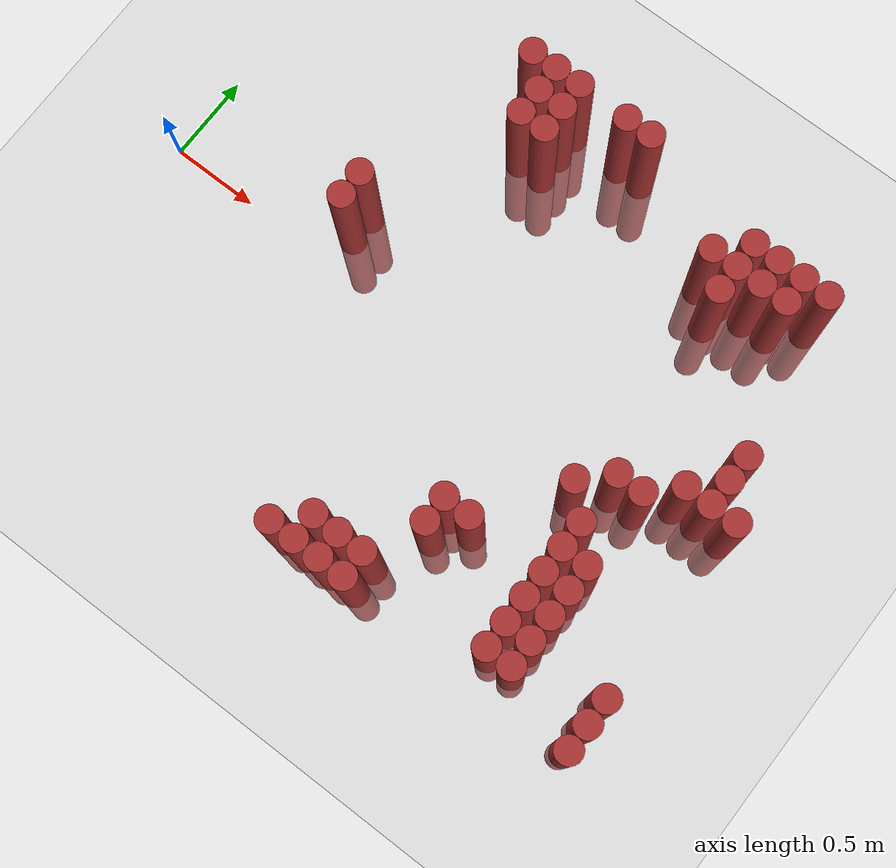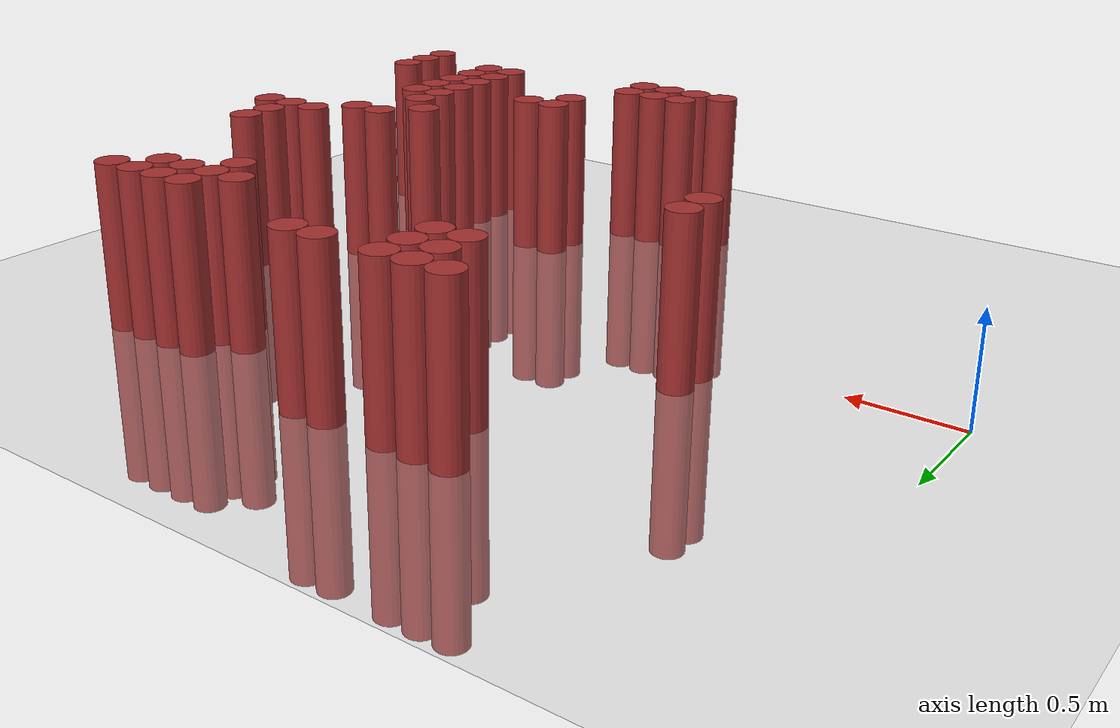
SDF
<sdf version="1.6">
 <world name="default">
  <model name="ground_plane">
   <static>1</static>
   <link name="link">
    <collision name="collision">
     <geometry><plane><normal>0 0 1</normal><size>100 100</size></plane></geometry>
     <surface><friction><ode><mu>100</mu><mu2>50</mu2></ode></friction></surface>
    </collision>
    <visual name="visual">
     <cast_shadows>0</cast_shadows>
     <geometry><plane><normal>0 0 1</normal><size>100 100</size></plane></geometry>
     <material>
      <script><uri>file://media/materials/scripts/gazebo.material</uri><name>Gazebo/Grey</name></script>
     </material>
    </visual>
   </link>
  </model>
  <model name="unit_cylinder_413">
   <static>1</static>
   <pose>1.075000 0.175000 0.000000 0.000000 0.000000 0.000000</pose>
   <link name="link">
    <inertial>
     <mass>1</mass>
     <inertia><ixx>0.145833</ixx><ixy>0</ixy><ixz>0</ixz><iyy>0.145833</iyy><iyz>0</iyz><izz>0.125</izz></inertia>
    </inertial>
    <collision name="collision">
     <geometry><cylinder><radius>0.075000</radius><length>1.5</length></cylinder></geometry>
    </collision>
    <visual name="visual">
     <geometry><cylinder><radius>0.075000</radius><length>1.5</length></cylinder></geometry>
     <material>
      <ambient>0.648000 0.192000 0.192000 1</ambient>
      <diffuse>0.648000 0.192000 0.192000 1</diffuse>
     </material>
     <material>
      <script><name>Gazebo/Grey</name><uri>file://media/materials/scripts/gazebo.material</uri></script>
     </material>
    </visual>
   </link>
  </model>
  <model name="unit_cylinder_414">
   <static>1</static>
   <pose>1.075000 0.325000 0.000000 0.000000 0.000000 0.000000</pose>
   <link name="link">
    <inertial>
     <mass>1</mass>
     <inertia><ixx>0.145833</ixx><ixy>0</ixy><ixz>0</ixz><iyy>0.145833</iyy><iyz>0</iyz><izz>0.125</izz></inertia>
    </inertial>
    <collision name="collision">
     <geometry><cylinder><radius>0.075000</radius><length>1.5</length></cylinder></geometry>
    </collision>
    <visual name="visual">
     <geometry><cylinder><radius>0.075000</radius><length>1.5</length></cylinder></geometry>
     <material>
      <ambient>0.648000 0.192000 0.192000 1</ambient>
      <diffuse>0.648000 0.192000 0.192000 1</diffuse>
     </material>
     <material>
      <script><name>Gazebo/Grey</name><uri>file://media/materials/scripts/gazebo.material</uri></script>
     </material>
    </visual>
   </link>
  </model>
  <model name="unit_cylinder_419">
   <static>1</static>
   <pose>1.375000 1.375000 0.000000 0.000000 0.000000 0.000000</pose>
   <link name="link">
    <inertial>
     <mass>1</mass>
     <inertia><ixx>0.145833</ixx><ixy>0</ixy><ixz>0</ixz><iyy>0.145833</iyy><iyz>0</iyz><izz>0.125</izz></inertia>
    </inertial>
    <collision name="collision">
     <geometry><cylinder><radius>0.075000</radius><length>1.5</length></cylinder></geometry>
    </collision>
    <visual name="visual">
     <geometry><cylinder><radius>0.075000</radius><length>1.5</length></cylinder></geometry>
     <material>
      <ambient>0.648000 0.192000 0.192000 1</ambient>
      <diffuse>0.648000 0.192000 0.192000 1</diffuse>
     </material>
     <material>
      <script><name>Gazebo/Grey</name><uri>file://media/materials/scripts/gazebo.material</uri></script>
     </material>
    </visual>
   </link>
  </model>
  <model name="unit_cylinder_424">
   <static>1</static>
   <pose>1.525000 1.075000 0.000000 0.000000 0.000000 0.000000</pose>
   <link name="link">
    <inertial>
     <mass>1</mass>
     <inertia><ixx>0.145833</ixx><ixy>0</ixy><ixz>0</ixz><iyy>0.145833</iyy><iyz>0</iyz><izz>0.125</izz></inertia>
    </inertial>
    <collision name="collision">
     <geometry><cylinder><radius>0.075000</radius><length>1.5</length></cylinder></geometry>
    </collision>
    <visual name="visual">
     <geometry><cylinder><radius>0.075000</radius><length>1.5</length></cylinder></geometry>
     <material>
      <ambient>0.648000 0.192000 0.192000 1</ambient>
      <diffuse>0.648000 0.192000 0.192000 1</diffuse>
     </material>
     <material>
      <script><name>Gazebo/Grey</name><uri>file://media/materials/scripts/gazebo.material</uri></script>
     </material>
    </visual>
   </link>
  </model>
  <model name="unit_cylinder_425">
   <static>1</static>
   <pose>1.525000 1.225000 0.000000 0.000000 0.000000 0.000000</pose>
   <link name="link">
    <inertial>
     <mass>1</mass>
     <inertia><ixx>0.145833</ixx><ixy>0</ixy><ixz>0</ixz><iyy>0.145833</iyy><iyz>0</iyz><izz>0.125</izz></inertia>
    </inertial>
    <collision name="collision">
     <geometry><cylinder><radius>0.075000</radius><length>1.5</length></cylinder></geometry>
    </collision>
    <visual name="visual">
     <geometry><cylinder><radius>0.075000</radius><length>1.5</length></cylinder></geometry>
     <material>
      <ambient>0.648000 0.192000 0.192000 1</ambient>
      <diffuse>0.648000 0.192000 0.192000 1</diffuse>
     </material>
     <material>
      <script><name>Gazebo/Grey</name><uri>file://media/materials/scripts/gazebo.material</uri></script>
     </material>
    </visual>
   </link>
  </model>
  <model name="unit_cylinder_426">
   <static>1</static>
   <pose>1.525000 1.375000 0.000000 0.000000 0.000000 0.000000</pose>
   <link name="link">
    <inertial>
     <mass>1</mass>
     <inertia><ixx>0.145833</ixx><ixy>0</ixy><ixz>0</ixz><iyy>0.145833</iyy><iyz>0</iyz><izz>0.125</izz></inertia>
    </inertial>
    <collision name="collision">
     <geometry><cylinder><radius>0.075000</radius><length>1.5</length></cylinder></geometry>
    </collision>
    <visual name="visual">
     <geometry><cylinder><radius>0.075000</radius><length>1.5</length></cylinder></geometry>
     <material>
      <ambient>0.648000 0.192000 0.192000 1</ambient>
      <diffuse>0.648000 0.192000 0.192000 1</diffuse>
     </material>
     <material>
      <script><name>Gazebo/Grey</name><uri>file://media/materials/scripts/gazebo.material</uri></script>
     </material>
    </visual>
   </link>
  </model>
  <model name="unit_cylinder_434">
   <static>1</static>
   <pose>1.675000 1.075000 0.000000 0.000000 0.000000 0.000000</pose>
   <link name="link">
    <inertial>
     <mass>1</mass>
     <inertia><ixx>0.145833</ixx><ixy>0</ixy><ixz>0</ixz><iyy>0.145833</iyy><iyz>0</iyz><izz>0.125</izz></inertia>
    </inertial>
    <collision name="collision">
     <geometry><cylinder><radius>0.075000</radius><length>1.5</length></cylinder></geometry>
    </collision>
    <visual name="visual">
     <geometry><cylinder><radius>0.075000</radius><length>1.5</length></cylinder></geometry>
     <material>
      <ambient>0.648000 0.192000 0.192000 1</ambient>
      <diffuse>0.648000 0.192000 0.192000 1</diffuse>
     </material>
     <material>
      <script><name>Gazebo/Grey</name><uri>file://media/materials/scripts/gazebo.material</uri></script>
     </material>
    </visual>
   </link>
  </model>
  <model name="unit_cylinder_435">
   <static>1</static>
   <pose>1.675000 1.225000 0.000000 0.000000 0.000000 0.000000</pose>
   <link name="link">
    <inertial>
     <mass>1</mass>
     <inertia><ixx>0.145833</ixx><ixy>0</ixy><ixz>0</ixz><iyy>0.145833</iyy><iyz>0</iyz><izz>0.125</izz></inertia>
    </inertial>
    <collision name="collision">
     <geometry><cylinder><radius>0.075000</radius><length>1.5</length></cylinder></geometry>
    </collision>
    <visual name="visual">
     <geometry><cylinder><radius>0.075000</radius><length>1.5</length></cylinder></geometry>
     <material>
      <ambient>0.648000 0.192000 0.192000 1</ambient>
      <diffuse>0.648000 0.192000 0.192000 1</diffuse>
     </material>
     <material>
      <script><name>Gazebo/Grey</name><uri>file://media/materials/scripts/gazebo.material</uri></script>
     </material>
    </visual>
   </link>
  </model>
  <model name="unit_cylinder_436">
   <static>1</static>
   <pose>1.675000 1.375000 0.000000 0.000000 0.000000 0.000000</pose>
   <link name="link">
    <inertial>
     <mass>1</mass>
     <inertia><ixx>0.145833</ixx><ixy>0</ixy><ixz>0</ixz><iyy>0.145833</iyy><iyz>0</iyz><izz>0.125</izz></inertia>
    </inertial>
    <collision name="collision">
     <geometry><cylinder><radius>0.075000</radius><length>1.5</length></cylinder></geometry>
    </collision>
    <visual name="visual">
     <geometry><cylinder><radius>0.075000</radius><length>1.5</length></cylinder></geometry>
     <material>
      <ambient>0.648000 0.192000 0.192000 1</ambient>
      <diffuse>0.648000 0.192000 0.192000 1</diffuse>
     </material>
     <material>
      <script><name>Gazebo/Grey</name><uri>file://media/materials/scripts/gazebo.material</uri></script>
     </material>
    </visual>
   </link>
  </model>
  <model name="unit_cylinder_444">
   <static>1</static>
   <pose>1.825000 -1.325000 0.000000 0.000000 0.000000 0.000000</pose>
   <link name="link">
    <inertial>
     <mass>1</mass>
     <inertia><ixx>0.145833</ixx><ixy>0</ixy><ixz>0</ixz><iyy>0.145833</iyy><iyz>0</iyz><izz>0.125</izz></inertia>
    </inertial>
    <collision name="collision">
     <geometry><cylinder><radius>0.075000</radius><length>1.5</length></cylinder></geometry>
    </collision>
    <visual name="visual">
     <geometry><cylinder><radius>0.075000</radius><length>1.5</length></cylinder></geometry>
     <material>
      <ambient>0.648000 0.192000 0.192000 1</ambient>
      <diffuse>0.648000 0.192000 0.192000 1</diffuse>
     </material>
     <material>
      <script><name>Gazebo/Grey</name><uri>file://media/materials/scripts/gazebo.material</uri></script>
     </material>
    </visual>
   </link>
  </model>
  <model name="unit_cylinder_448">
   <static>1</static>
   <pose>1.975000 -1.325000 0.000000 0.000000 0.000000 0.000000</pose>
   <link name="link">
    <inertial>
     <mass>1</mass>
     <inertia><ixx>0.145833</ixx><ixy>0</ixy><ixz>0</ixz><iyy>0.145833</iyy><iyz>0</iyz><izz>0.125</izz></inertia>
    </inertial>
    <collision name="collision">
     <geometry><cylinder><radius>0.075000</radius><length>1.5</length></cylinder></geometry>
    </collision>
    <visual name="visual">
     <geometry><cylinder><radius>0.075000</radius><length>1.5</length></cylinder></geometry>
     <material>
      <ambient>0.648000 0.192000 0.192000 1</ambient>
      <diffuse>0.648000 0.192000 0.192000 1</diffuse>
     </material>
     <material>
      <script><name>Gazebo/Grey</name><uri>file://media/materials/scripts/gazebo.material</uri></script>
     </material>
    </visual>
   </link>
  </model>
  <model name="unit_cylinder_449">
   <static>1</static>
   <pose>1.975000 -1.175000 0.000000 0.000000 0.000000 0.000000</pose>
   <link name="link">
    <inertial>
     <mass>1</mass>
     <inertia><ixx>0.145833</ixx><ixy>0</ixy><ixz>0</ixz><iyy>0.145833</iyy><iyz>0</iyz><izz>0.125</izz></inertia>
    </inertial>
    <collision name="collision">
     <geometry><cylinder><radius>0.075000</radius><length>1.5</length></cylinder></geometry>
    </collision>
    <visual name="visual">
     <geometry><cylinder><radius>0.075000</radius><length>1.5</length></cylinder></geometry>
     <material>
      <ambient>0.648000 0.192000 0.192000 1</ambient>
      <diffuse>0.648000 0.192000 0.192000 1</diffuse>
     </material>
     <material>
      <script><name>Gazebo/Grey</name><uri>file://media/materials/scripts/gazebo.material</uri></script>
     </material>
    </visual>
   </link>
  </model>
  <model name="unit_cylinder_450">
   <static>1</static>
   <pose>1.975000 1.375000 0.000000 0.000000 0.000000 0.000000</pose>
   <link name="link">
    <inertial>
     <mass>1</mass>
     <inertia><ixx>0.145833</ixx><ixy>0</ixy><ixz>0</ixz><iyy>0.145833</iyy><iyz>0</iyz><izz>0.125</izz></inertia>
    </inertial>
    <collision name="collision">
     <geometry><cylinder><radius>0.075000</radius><length>1.5</length></cylinder></geometry>
    </collision>
    <visual name="visual">
     <geometry><cylinder><radius>0.075000</radius><length>1.5</length></cylinder></geometry>
     <material>
      <ambient>0.648000 0.192000 0.192000 1</ambient>
      <diffuse>0.648000 0.192000 0.192000 1</diffuse>
     </material>
     <material>
      <script><name>Gazebo/Grey</name><uri>file://media/materials/scripts/gazebo.material</uri></script>
     </material>
    </visual>
   </link>
  </model>
  <model name="unit_cylinder_456">
   <static>1</static>
   <pose>2.125000 -1.325000 0.000000 0.000000 0.000000 0.000000</pose>
   <link name="link">
    <inertial>
     <mass>1</mass>
     <inertia><ixx>0.145833</ixx><ixy>0</ixy><ixz>0</ixz><iyy>0.145833</iyy><iyz>0</iyz><izz>0.125</izz></inertia>
    </inertial>
    <collision name="collision">
     <geometry><cylinder><radius>0.075000</radius><length>1.5</length></cylinder></geometry>
    </collision>
    <visual name="visual">
     <geometry><cylinder><radius>0.075000</radius><length>1.5</length></cylinder></geometry>
     <material>
      <ambient>0.648000 0.192000 0.192000 1</ambient>
      <diffuse>0.648000 0.192000 0.192000 1</diffuse>
     </material>
     <material>
      <script><name>Gazebo/Grey</name><uri>file://media/materials/scripts/gazebo.material</uri></script>
     </material>
    </visual>
   </link>
  </model>
  <model name="unit_cylinder_457">
   <static>1</static>
   <pose>2.125000 -1.175000 0.000000 0.000000 0.000000 0.000000</pose>
   <link name="link">
    <inertial>
     <mass>1</mass>
     <inertia><ixx>0.145833</ixx><ixy>0</ixy><ixz>0</ixz><iyy>0.145833</iyy><iyz>0</iyz><izz>0.125</izz></inertia>
    </inertial>
    <collision name="collision">
     <geometry><cylinder><radius>0.075000</radius><length>1.5</length></cylinder></geometry>
    </collision>
    <visual name="visual">
     <geometry><cylinder><radius>0.075000</radius><length>1.5</length></cylinder></geometry>
     <material>
      <ambient>0.648000 0.192000 0.192000 1</ambient>
      <diffuse>0.648000 0.192000 0.192000 1</diffuse>
     </material>
     <material>
      <script><name>Gazebo/Grey</name><uri>file://media/materials/scripts/gazebo.material</uri></script>
     </material>
    </visual>
   </link>
  </model>
  <model name="unit_cylinder_458">
   <static>1</static>
   <pose>2.125000 1.375000 0.000000 0.000000 0.000000 0.000000</pose>
   <link name="link">
    <inertial>
     <mass>1</mass>
     <inertia><ixx>0.145833</ixx><ixy>0</ixy><ixz>0</ixz><iyy>0.145833</iyy><iyz>0</iyz><izz>0.125</izz></inertia>
    </inertial>
    <collision name="collision">
     <geometry><cylinder><radius>0.075000</radius><length>1.5</length></cylinder></geometry>
    </collision>
    <visual name="visual">
     <geometry><cylinder><radius>0.075000</radius><length>1.5</length></cylinder></geometry>
     <material>
      <ambient>0.648000 0.192000 0.192000 1</ambient>
      <diffuse>0.648000 0.192000 0.192000 1</diffuse>
     </material>
     <material>
      <script><name>Gazebo/Grey</name><uri>file://media/materials/scripts/gazebo.material</uri></script>
     </material>
    </visual>
   </link>
  </model>
  <model name="unit_cylinder_463">
   <static>1</static>
   <pose>2.275000 -1.325000 0.000000 0.000000 0.000000 0.000000</pose>
   <link name="link">
    <inertial>
     <mass>1</mass>
     <inertia><ixx>0.145833</ixx><ixy>0</ixy><ixz>0</ixz><iyy>0.145833</iyy><iyz>0</iyz><izz>0.125</izz></inertia>
    </inertial>
    <collision name="collision">
     <geometry><cylinder><radius>0.075000</radius><length>1.5</length></cylinder></geometry>
    </collision>
    <visual name="visual">
     <geometry><cylinder><radius>0.075000</radius><length>1.5</length></cylinder></geometry>
     <material>
      <ambient>0.648000 0.192000 0.192000 1</ambient>
      <diffuse>0.648000 0.192000 0.192000 1</diffuse>
     </material>
     <material>
      <script><name>Gazebo/Grey</name><uri>file://media/materials/scripts/gazebo.material</uri></script>
     </material>
    </visual>
   </link>
  </model>
  <model name="unit_cylinder_464">
   <static>1</static>
   <pose>2.275000 -1.175000 0.000000 0.000000 0.000000 0.000000</pose>
   <link name="link">
    <inertial>
     <mass>1</mass>
     <inertia><ixx>0.145833</ixx><ixy>0</ixy><ixz>0</ixz><iyy>0.145833</iyy><iyz>0</iyz><izz>0.125</izz></inertia>
    </inertial>
    <collision name="collision">
     <geometry><cylinder><radius>0.075000</radius><length>1.5</length></cylinder></geometry>
    </collision>
    <visual name="visual">
     <geometry><cylinder><radius>0.075000</radius><length>1.5</length></cylinder></geometry>
     <material>
      <ambient>0.648000 0.192000 0.192000 1</ambient>
      <diffuse>0.648000 0.192000 0.192000 1</diffuse>
     </material>
     <material>
      <script><name>Gazebo/Grey</name><uri>file://media/materials/scripts/gazebo.material</uri></script>
     </material>
    </visual>
   </link>
  </model>
  <model name="unit_cylinder_473">
   <static>1</static>
   <pose>2.425000 -0.875000 0.000000 0.000000 0.000000 0.000000</pose>
   <link name="link">
    <inertial>
     <mass>1</mass>
     <inertia><ixx>0.145833</ixx><ixy>0</ixy><ixz>0</ixz><iyy>0.145833</iyy><iyz>0</iyz><izz>0.125</izz></inertia>
    </inertial>
    <collision name="collision">
     <geometry><cylinder><radius>0.075000</radius><length>1.5</length></cylinder></geometry>
    </collision>
    <visual name="visual">
     <geometry><cylinder><radius>0.075000</radius><length>1.5</length></cylinder></geometry>
     <material>
      <ambient>0.648000 0.192000 0.192000 1</ambient>
      <diffuse>0.648000 0.192000 0.192000 1</diffuse>
     </material>
     <material>
      <script><name>Gazebo/Grey</name><uri>file://media/materials/scripts/gazebo.material</uri></script>
     </material>
    </visual>
   </link>
  </model>
  <model name="unit_cylinder_474">
   <static>1</static>
   <pose>2.425000 -0.725000 0.000000 0.000000 0.000000 0.000000</pose>
   <link name="link">
    <inertial>
     <mass>1</mass>
     <inertia><ixx>0.145833</ixx><ixy>0</ixy><ixz>0</ixz><iyy>0.145833</iyy><iyz>0</iyz><izz>0.125</izz></inertia>
    </inertial>
    <collision name="collision">
     <geometry><cylinder><radius>0.075000</radius><length>1.5</length></cylinder></geometry>
    </collision>
    <visual name="visual">
     <geometry><cylinder><radius>0.075000</radius><length>1.5</length></cylinder></geometry>
     <material>
      <ambient>0.648000 0.192000 0.192000 1</ambient>
      <diffuse>0.648000 0.192000 0.192000 1</diffuse>
     </material>
     <material>
      <script><name>Gazebo/Grey</name><uri>file://media/materials/scripts/gazebo.material</uri></script>
     </material>
    </visual>
   </link>
  </model>
  <model name="unit_cylinder_480">
   <static>1</static>
   <pose>2.575000 -0.725000 0.000000 0.000000 0.000000 0.000000</pose>
   <link name="link">
    <inertial>
     <mass>1</mass>
     <inertia><ixx>0.145833</ixx><ixy>0</ixy><ixz>0</ixz><iyy>0.145833</iyy><iyz>0</iyz><izz>0.125</izz></inertia>
    </inertial>
    <collision name="collision">
     <geometry><cylinder><radius>0.075000</radius><length>1.5</length></cylinder></geometry>
    </collision>
    <visual name="visual">
     <geometry><cylinder><radius>0.075000</radius><length>1.5</length></cylinder></geometry>
     <material>
      <ambient>0.648000 0.192000 0.192000 1</ambient>
      <diffuse>0.648000 0.192000 0.192000 1</diffuse>
     </material>
     <material>
      <script><name>Gazebo/Grey</name><uri>file://media/materials/scripts/gazebo.material</uri></script>
     </material>
    </visual>
   </link>
  </model>
  <model name="unit_cylinder_483">
   <static>1</static>
   <pose>2.725000 1.075000 0.000000 0.000000 0.000000 0.000000</pose>
   <link name="link">
    <inertial>
     <mass>1</mass>
     <inertia><ixx>0.145833</ixx><ixy>0</ixy><ixz>0</ixz><iyy>0.145833</iyy><iyz>0</iyz><izz>0.125</izz></inertia>
    </inertial>
    <collision name="collision">
     <geometry><cylinder><radius>0.075000</radius><length>1.5</length></cylinder></geometry>
    </collision>
    <visual name="visual">
     <geometry><cylinder><radius>0.075000</radius><length>1.5</length></cylinder></geometry>
     <material>
      <ambient>0.648000 0.192000 0.192000 1</ambient>
      <diffuse>0.648000 0.192000 0.192000 1</diffuse>
     </material>
     <material>
      <script><name>Gazebo/Grey</name><uri>file://media/materials/scripts/gazebo.material</uri></script>
     </material>
    </visual>
   </link>
  </model>
  <model name="unit_cylinder_491">
   <static>1</static>
   <pose>2.875000 -0.275000 0.000000 0.000000 0.000000 0.000000</pose>
   <link name="link">
    <inertial>
     <mass>1</mass>
     <inertia><ixx>0.145833</ixx><ixy>0</ixy><ixz>0</ixz><iyy>0.145833</iyy><iyz>0</iyz><izz>0.125</izz></inertia>
    </inertial>
    <collision name="collision">
     <geometry><cylinder><radius>0.075000</radius><length>1.5</length></cylinder></geometry>
    </collision>
    <visual name="visual">
     <geometry><cylinder><radius>0.075000</radius><length>1.5</length></cylinder></geometry>
     <material>
      <ambient>0.648000 0.192000 0.192000 1</ambient>
      <diffuse>0.648000 0.192000 0.192000 1</diffuse>
     </material>
     <material>
      <script><name>Gazebo/Grey</name><uri>file://media/materials/scripts/gazebo.material</uri></script>
     </material>
    </visual>
   </link>
  </model>
  <model name="unit_cylinder_492">
   <static>1</static>
   <pose>2.875000 0.925000 0.000000 0.000000 0.000000 0.000000</pose>
   <link name="link">
    <inertial>
     <mass>1</mass>
     <inertia><ixx>0.145833</ixx><ixy>0</ixy><ixz>0</ixz><iyy>0.145833</iyy><iyz>0</iyz><izz>0.125</izz></inertia>
    </inertial>
    <collision name="collision">
     <geometry><cylinder><radius>0.075000</radius><length>1.5</length></cylinder></geometry>
    </collision>
    <visual name="visual">
     <geometry><cylinder><radius>0.075000</radius><length>1.5</length></cylinder></geometry>
     <material>
      <ambient>0.648000 0.192000 0.192000 1</ambient>
      <diffuse>0.648000 0.192000 0.192000 1</diffuse>
     </material>
     <material>
      <script><name>Gazebo/Grey</name><uri>file://media/materials/scripts/gazebo.material</uri></script>
     </material>
    </visual>
   </link>
  </model>
  <model name="unit_cylinder_493">
   <static>1</static>
   <pose>2.875000 1.075000 0.000000 0.000000 0.000000 0.000000</pose>
   <link name="link">
    <inertial>
     <mass>1</mass>
     <inertia><ixx>0.145833</ixx><ixy>0</ixy><ixz>0</ixz><iyy>0.145833</iyy><iyz>0</iyz><izz>0.125</izz></inertia>
    </inertial>
    <collision name="collision">
     <geometry><cylinder><radius>0.075000</radius><length>1.5</length></cylinder></geometry>
    </collision>
    <visual name="visual">
     <geometry><cylinder><radius>0.075000</radius><length>1.5</length></cylinder></geometry>
     <material>
      <ambient>0.648000 0.192000 0.192000 1</ambient>
      <diffuse>0.648000 0.192000 0.192000 1</diffuse>
     </material>
     <material>
      <script><name>Gazebo/Grey</name><uri>file://media/materials/scripts/gazebo.material</uri></script>
     </material>
    </visual>
   </link>
  </model>
  <model name="unit_cylinder_494">
   <static>1</static>
   <pose>2.875000 1.225000 0.000000 0.000000 0.000000 0.000000</pose>
   <link name="link">
    <inertial>
     <mass>1</mass>
     <inertia><ixx>0.145833</ixx><ixy>0</ixy><ixz>0</ixz><iyy>0.145833</iyy><iyz>0</iyz><izz>0.125</izz></inertia>
    </inertial>
    <collision name="collision">
     <geometry><cylinder><radius>0.075000</radius><length>1.5</length></cylinder></geometry>
    </collision>
    <visual name="visual">
     <geometry><cylinder><radius>0.075000</radius><length>1.5</length></cylinder></geometry>
     <material>
      <ambient>0.648000 0.192000 0.192000 1</ambient>
      <diffuse>0.648000 0.192000 0.192000 1</diffuse>
     </material>
     <material>
      <script><name>Gazebo/Grey</name><uri>file://media/materials/scripts/gazebo.material</uri></script>
     </material>
    </visual>
   </link>
  </model>
  <model name="unit_cylinder_500">
   <static>1</static>
   <pose>3.025000 -1.175000 0.000000 0.000000 0.000000 0.000000</pose>
   <link name="link">
    <inertial>
     <mass>1</mass>
     <inertia><ixx>0.145833</ixx><ixy>0</ixy><ixz>0</ixz><iyy>0.145833</iyy><iyz>0</iyz><izz>0.125</izz></inertia>
    </inertial>
    <collision name="collision">
     <geometry><cylinder><radius>0.075000</radius><length>1.5</length></cylinder></geometry>
    </collision>
    <visual name="visual">
     <geometry><cylinder><radius>0.075000</radius><length>1.5</length></cylinder></geometry>
     <material>
      <ambient>0.648000 0.192000 0.192000 1</ambient>
      <diffuse>0.648000 0.192000 0.192000 1</diffuse>
     </material>
     <material>
      <script><name>Gazebo/Grey</name><uri>file://media/materials/scripts/gazebo.material</uri></script>
     </material>
    </visual>
   </link>
  </model>
  <model name="unit_cylinder_501">
   <static>1</static>
   <pose>3.025000 -1.025000 0.000000 0.000000 0.000000 0.000000</pose>
   <link name="link">
    <inertial>
     <mass>1</mass>
     <inertia><ixx>0.145833</ixx><ixy>0</ixy><ixz>0</ixz><iyy>0.145833</iyy><iyz>0</iyz><izz>0.125</izz></inertia>
    </inertial>
    <collision name="collision">
     <geometry><cylinder><radius>0.075000</radius><length>1.5</length></cylinder></geometry>
    </collision>
    <visual name="visual">
     <geometry><cylinder><radius>0.075000</radius><length>1.5</length></cylinder></geometry>
     <material>
      <ambient>0.648000 0.192000 0.192000 1</ambient>
      <diffuse>0.648000 0.192000 0.192000 1</diffuse>
     </material>
     <material>
      <script><name>Gazebo/Grey</name><uri>file://media/materials/scripts/gazebo.material</uri></script>
     </material>
    </visual>
   </link>
  </model>
  <model name="unit_cylinder_502">
   <static>1</static>
   <pose>3.025000 -0.875000 0.000000 0.000000 0.000000 0.000000</pose>
   <link name="link">
    <inertial>
     <mass>1</mass>
     <inertia><ixx>0.145833</ixx><ixy>0</ixy><ixz>0</ixz><iyy>0.145833</iyy><iyz>0</iyz><izz>0.125</izz></inertia>
    </inertial>
    <collision name="collision">
     <geometry><cylinder><radius>0.075000</radius><length>1.5</length></cylinder></geometry>
    </collision>
    <visual name="visual">
     <geometry><cylinder><radius>0.075000</radius><length>1.5</length></cylinder></geometry>
     <material>
      <ambient>0.648000 0.192000 0.192000 1</ambient>
      <diffuse>0.648000 0.192000 0.192000 1</diffuse>
     </material>
     <material>
      <script><name>Gazebo/Grey</name><uri>file://media/materials/scripts/gazebo.material</uri></script>
     </material>
    </visual>
   </link>
  </model>
  <model name="unit_cylinder_503">
   <static>1</static>
   <pose>3.025000 -0.725000 0.000000 0.000000 0.000000 0.000000</pose>
   <link name="link">
    <inertial>
     <mass>1</mass>
     <inertia><ixx>0.145833</ixx><ixy>0</ixy><ixz>0</ixz><iyy>0.145833</iyy><iyz>0</iyz><izz>0.125</izz></inertia>
    </inertial>
    <collision name="collision">
     <geometry><cylinder><radius>0.075000</radius><length>1.5</length></cylinder></geometry>
    </collision>
    <visual name="visual">
     <geometry><cylinder><radius>0.075000</radius><length>1.5</length></cylinder></geometry>
     <material>
      <ambient>0.648000 0.192000 0.192000 1</ambient>
      <diffuse>0.648000 0.192000 0.192000 1</diffuse>
     </material>
     <material>
      <script><name>Gazebo/Grey</name><uri>file://media/materials/scripts/gazebo.material</uri></script>
     </material>
    </visual>
   </link>
  </model>
  <model name="unit_cylinder_504">
   <static>1</static>
   <pose>3.025000 -0.575000 0.000000 0.000000 0.000000 0.000000</pose>
   <link name="link">
    <inertial>
     <mass>1</mass>
     <inertia><ixx>0.145833</ixx><ixy>0</ixy><ixz>0</ixz><iyy>0.145833</iyy><iyz>0</iyz><izz>0.125</izz></inertia>
    </inertial>
    <collision name="collision">
     <geometry><cylinder><radius>0.075000</radius><length>1.5</length></cylinder></geometry>
    </collision>
    <visual name="visual">
     <geometry><cylinder><radius>0.075000</radius><length>1.5</length></cylinder></geometry>
     <material>
      <ambient>0.648000 0.192000 0.192000 1</ambient>
      <diffuse>0.648000 0.192000 0.192000 1</diffuse>
     </material>
     <material>
      <script><name>Gazebo/Grey</name><uri>file://media/materials/scripts/gazebo.material</uri></script>
     </material>
    </visual>
   </link>
  </model>
  <model name="unit_cylinder_505">
   <static>1</static>
   <pose>3.025000 -0.425000 0.000000 0.000000 0.000000 0.000000</pose>
   <link name="link">
    <inertial>
     <mass>1</mass>
     <inertia><ixx>0.145833</ixx><ixy>0</ixy><ixz>0</ixz><iyy>0.145833</iyy><iyz>0</iyz><izz>0.125</izz></inertia>
    </inertial>
    <collision name="collision">
     <geometry><cylinder><radius>0.075000</radius><length>1.5</length></cylinder></geometry>
    </collision>
    <visual name="visual">
     <geometry><cylinder><radius>0.075000</radius><length>1.5</length></cylinder></geometry>
     <material>
      <ambient>0.648000 0.192000 0.192000 1</ambient>
      <diffuse>0.648000 0.192000 0.192000 1</diffuse>
     </material>
     <material>
      <script><name>Gazebo/Grey</name><uri>file://media/materials/scripts/gazebo.material</uri></script>
     </material>
    </visual>
   </link>
  </model>
  <model name="unit_cylinder_506">
   <static>1</static>
   <pose>3.025000 -0.125000 0.000000 0.000000 0.000000 0.000000</pose>
   <link name="link">
    <inertial>
     <mass>1</mass>
     <inertia><ixx>0.145833</ixx><ixy>0</ixy><ixz>0</ixz><iyy>0.145833</iyy><iyz>0</iyz><izz>0.125</izz></inertia>
    </inertial>
    <collision name="collision">
     <geometry><cylinder><radius>0.075000</radius><length>1.5</length></cylinder></geometry>
    </collision>
    <visual name="visual">
     <geometry><cylinder><radius>0.075000</radius><length>1.5</length></cylinder></geometry>
     <material>
      <ambient>0.648000 0.192000 0.192000 1</ambient>
      <diffuse>0.648000 0.192000 0.192000 1</diffuse>
     </material>
     <material>
      <script><name>Gazebo/Grey</name><uri>file://media/materials/scripts/gazebo.material</uri></script>
     </material>
    </visual>
   </link>
  </model>
  <model name="unit_cylinder_507">
   <static>1</static>
   <pose>3.025000 1.075000 0.000000 0.000000 0.000000 0.000000</pose>
   <link name="link">
    <inertial>
     <mass>1</mass>
     <inertia><ixx>0.145833</ixx><ixy>0</ixy><ixz>0</ixz><iyy>0.145833</iyy><iyz>0</iyz><izz>0.125</izz></inertia>
    </inertial>
    <collision name="collision">
     <geometry><cylinder><radius>0.075000</radius><length>1.5</length></cylinder></geometry>
    </collision>
    <visual name="visual">
     <geometry><cylinder><radius>0.075000</radius><length>1.5</length></cylinder></geometry>
     <material>
      <ambient>0.648000 0.192000 0.192000 1</ambient>
      <diffuse>0.648000 0.192000 0.192000 1</diffuse>
     </material>
     <material>
      <script><name>Gazebo/Grey</name><uri>file://media/materials/scripts/gazebo.material</uri></script>
     </material>
    </visual>
   </link>
  </model>
  <model name="unit_cylinder_508">
   <static>1</static>
   <pose>3.025000 1.225000 0.000000 0.000000 0.000000 0.000000</pose>
   <link name="link">
    <inertial>
     <mass>1</mass>
     <inertia><ixx>0.145833</ixx><ixy>0</ixy><ixz>0</ixz><iyy>0.145833</iyy><iyz>0</iyz><izz>0.125</izz></inertia>
    </inertial>
    <collision name="collision">
     <geometry><cylinder><radius>0.075000</radius><length>1.5</length></cylinder></geometry>
    </collision>
    <visual name="visual">
     <geometry><cylinder><radius>0.075000</radius><length>1.5</length></cylinder></geometry>
     <material>
      <ambient>0.648000 0.192000 0.192000 1</ambient>
      <diffuse>0.648000 0.192000 0.192000 1</diffuse>
     </material>
     <material>
      <script><name>Gazebo/Grey</name><uri>file://media/materials/scripts/gazebo.material</uri></script>
     </material>
    </visual>
   </link>
  </model>
  <model name="unit_cylinder_512">
   <static>1</static>
   <pose>3.175000 -1.175000 0.000000 0.000000 0.000000 0.000000</pose>
   <link name="link">
    <inertial>
     <mass>1</mass>
     <inertia><ixx>0.145833</ixx><ixy>0</ixy><ixz>0</ixz><iyy>0.145833</iyy><iyz>0</iyz><izz>0.125</izz></inertia>
    </inertial>
    <collision name="collision">
     <geometry><cylinder><radius>0.075000</radius><length>1.5</length></cylinder></geometry>
    </collision>
    <visual name="visual">
     <geometry><cylinder><radius>0.075000</radius><length>1.5</length></cylinder></geometry>
     <material>
      <ambient>0.648000 0.192000 0.192000 1</ambient>
      <diffuse>0.648000 0.192000 0.192000 1</diffuse>
     </material>
     <material>
      <script><name>Gazebo/Grey</name><uri>file://media/materials/scripts/gazebo.material</uri></script>
     </material>
    </visual>
   </link>
  </model>
  <model name="unit_cylinder_513">
   <static>1</static>
   <pose>3.175000 -1.025000 0.000000 0.000000 0.000000 0.000000</pose>
   <link name="link">
    <inertial>
     <mass>1</mass>
     <inertia><ixx>0.145833</ixx><ixy>0</ixy><ixz>0</ixz><iyy>0.145833</iyy><iyz>0</iyz><izz>0.125</izz></inertia>
    </inertial>
    <collision name="collision">
     <geometry><cylinder><radius>0.075000</radius><length>1.5</length></cylinder></geometry>
    </collision>
    <visual name="visual">
     <geometry><cylinder><radius>0.075000</radius><length>1.5</length></cylinder></geometry>
     <material>
      <ambient>0.648000 0.192000 0.192000 1</ambient>
      <diffuse>0.648000 0.192000 0.192000 1</diffuse>
     </material>
     <material>
      <script><name>Gazebo/Grey</name><uri>file://media/materials/scripts/gazebo.material</uri></script>
     </material>
    </visual>
   </link>
  </model>
  <model name="unit_cylinder_514">
   <static>1</static>
   <pose>3.175000 -0.875000 0.000000 0.000000 0.000000 0.000000</pose>
   <link name="link">
    <inertial>
     <mass>1</mass>
     <inertia><ixx>0.145833</ixx><ixy>0</ixy><ixz>0</ixz><iyy>0.145833</iyy><iyz>0</iyz><izz>0.125</izz></inertia>
    </inertial>
    <collision name="collision">
     <geometry><cylinder><radius>0.075000</radius><length>1.5</length></cylinder></geometry>
    </collision>
    <visual name="visual">
     <geometry><cylinder><radius>0.075000</radius><length>1.5</length></cylinder></geometry>
     <material>
      <ambient>0.648000 0.192000 0.192000 1</ambient>
      <diffuse>0.648000 0.192000 0.192000 1</diffuse>
     </material>
     <material>
      <script><name>Gazebo/Grey</name><uri>file://media/materials/scripts/gazebo.material</uri></script>
     </material>
    </visual>
   </link>
  </model>
  <model name="unit_cylinder_515">
   <static>1</static>
   <pose>3.175000 -0.725000 0.000000 0.000000 0.000000 0.000000</pose>
   <link name="link">
    <inertial>
     <mass>1</mass>
     <inertia><ixx>0.145833</ixx><ixy>0</ixy><ixz>0</ixz><iyy>0.145833</iyy><iyz>0</iyz><izz>0.125</izz></inertia>
    </inertial>
    <collision name="collision">
     <geometry><cylinder><radius>0.075000</radius><length>1.5</length></cylinder></geometry>
    </collision>
    <visual name="visual">
     <geometry><cylinder><radius>0.075000</radius><length>1.5</length></cylinder></geometry>
     <material>
      <ambient>0.648000 0.192000 0.192000 1</ambient>
      <diffuse>0.648000 0.192000 0.192000 1</diffuse>
     </material>
     <material>
      <script><name>Gazebo/Grey</name><uri>file://media/materials/scripts/gazebo.material</uri></script>
     </material>
    </visual>
   </link>
  </model>
  <model name="unit_cylinder_516">
   <static>1</static>
   <pose>3.175000 -0.575000 0.000000 0.000000 0.000000 0.000000</pose>
   <link name="link">
    <inertial>
     <mass>1</mass>
     <inertia><ixx>0.145833</ixx><ixy>0</ixy><ixz>0</ixz><iyy>0.145833</iyy><iyz>0</iyz><izz>0.125</izz></inertia>
    </inertial>
    <collision name="collision">
     <geometry><cylinder><radius>0.075000</radius><length>1.5</length></cylinder></geometry>
    </collision>
    <visual name="visual">
     <geometry><cylinder><radius>0.075000</radius><length>1.5</length></cylinder></geometry>
     <material>
      <ambient>0.648000 0.192000 0.192000 1</ambient>
      <diffuse>0.648000 0.192000 0.192000 1</diffuse>
     </material>
     <material>
      <script><name>Gazebo/Grey</name><uri>file://media/materials/scripts/gazebo.material</uri></script>
     </material>
    </visual>
   </link>
  </model>
  <model name="unit_cylinder_517">
   <static>1</static>
   <pose>3.175000 -0.125000 0.000000 0.000000 0.000000 0.000000</pose>
   <link name="link">
    <inertial>
     <mass>1</mass>
     <inertia><ixx>0.145833</ixx><ixy>0</ixy><ixz>0</ixz><iyy>0.145833</iyy><iyz>0</iyz><izz>0.125</izz></inertia>
    </inertial>
    <collision name="collision">
     <geometry><cylinder><radius>0.075000</radius><length>1.5</length></cylinder></geometry>
    </collision>
    <visual name="visual">
     <geometry><cylinder><radius>0.075000</radius><length>1.5</length></cylinder></geometry>
     <material>
      <ambient>0.648000 0.192000 0.192000 1</ambient>
      <diffuse>0.648000 0.192000 0.192000 1</diffuse>
     </material>
     <material>
      <script><name>Gazebo/Grey</name><uri>file://media/materials/scripts/gazebo.material</uri></script>
     </material>
    </visual>
   </link>
  </model>
  <model name="unit_cylinder_518">
   <static>1</static>
   <pose>3.175000 1.075000 0.000000 0.000000 0.000000 0.000000</pose>
   <link name="link">
    <inertial>
     <mass>1</mass>
     <inertia><ixx>0.145833</ixx><ixy>0</ixy><ixz>0</ixz><iyy>0.145833</iyy><iyz>0</iyz><izz>0.125</izz></inertia>
    </inertial>
    <collision name="collision">
     <geometry><cylinder><radius>0.075000</radius><length>1.5</length></cylinder></geometry>
    </collision>
    <visual name="visual">
     <geometry><cylinder><radius>0.075000</radius><length>1.5</length></cylinder></geometry>
     <material>
      <ambient>0.648000 0.192000 0.192000 1</ambient>
      <diffuse>0.648000 0.192000 0.192000 1</diffuse>
     </material>
     <material>
      <script><name>Gazebo/Grey</name><uri>file://media/materials/scripts/gazebo.material</uri></script>
     </material>
    </visual>
   </link>
  </model>
  <model name="unit_cylinder_519">
   <static>1</static>
   <pose>3.175000 1.225000 0.000000 0.000000 0.000000 0.000000</pose>
   <link name="link">
    <inertial>
     <mass>1</mass>
     <inertia><ixx>0.145833</ixx><ixy>0</ixy><ixz>0</ixz><iyy>0.145833</iyy><iyz>0</iyz><izz>0.125</izz></inertia>
    </inertial>
    <collision name="collision">
     <geometry><cylinder><radius>0.075000</radius><length>1.5</length></cylinder></geometry>
    </collision>
    <visual name="visual">
     <geometry><cylinder><radius>0.075000</radius><length>1.5</length></cylinder></geometry>
     <material>
      <ambient>0.648000 0.192000 0.192000 1</ambient>
      <diffuse>0.648000 0.192000 0.192000 1</diffuse>
     </material>
     <material>
      <script><name>Gazebo/Grey</name><uri>file://media/materials/scripts/gazebo.material</uri></script>
     </material>
    </visual>
   </link>
  </model>
  <model name="unit_cylinder_525">
   <static>1</static>
   <pose>3.325000 0.025000 0.000000 0.000000 0.000000 0.000000</pose>
   <link name="link">
    <inertial>
     <mass>1</mass>
     <inertia><ixx>0.145833</ixx><ixy>0</ixy><ixz>0</ixz><iyy>0.145833</iyy><iyz>0</iyz><izz>0.125</izz></inertia>
    </inertial>
    <collision name="collision">
     <geometry><cylinder><radius>0.075000</radius><length>1.5</length></cylinder></geometry>
    </collision>
    <visual name="visual">
     <geometry><cylinder><radius>0.075000</radius><length>1.5</length></cylinder></geometry>
     <material>
      <ambient>0.648000 0.192000 0.192000 1</ambient>
      <diffuse>0.648000 0.192000 0.192000 1</diffuse>
     </material>
     <material>
      <script><name>Gazebo/Grey</name><uri>file://media/materials/scripts/gazebo.material</uri></script>
     </material>
    </visual>
   </link>
  </model>
  <model name="unit_cylinder_526">
   <static>1</static>
   <pose>3.325000 1.225000 0.000000 0.000000 0.000000 0.000000</pose>
   <link name="link">
    <inertial>
     <mass>1</mass>
     <inertia><ixx>0.145833</ixx><ixy>0</ixy><ixz>0</ixz><iyy>0.145833</iyy><iyz>0</iyz><izz>0.125</izz></inertia>
    </inertial>
    <collision name="collision">
     <geometry><cylinder><radius>0.075000</radius><length>1.5</length></cylinder></geometry>
    </collision>
    <visual name="visual">
     <geometry><cylinder><radius>0.075000</radius><length>1.5</length></cylinder></geometry>
     <material>
      <ambient>0.648000 0.192000 0.192000 1</ambient>
      <diffuse>0.648000 0.192000 0.192000 1</diffuse>
     </material>
     <material>
      <script><name>Gazebo/Grey</name><uri>file://media/materials/scripts/gazebo.material</uri></script>
     </material>
    </visual>
   </link>
  </model>
  <model name="unit_cylinder_531">
   <static>1</static>
   <pose>3.475000 0.025000 0.000000 0.000000 0.000000 0.000000</pose>
   <link name="link">
    <inertial>
     <mass>1</mass>
     <inertia><ixx>0.145833</ixx><ixy>0</ixy><ixz>0</ixz><iyy>0.145833</iyy><iyz>0</iyz><izz>0.125</izz></inertia>
    </inertial>
    <collision name="collision">
     <geometry><cylinder><radius>0.075000</radius><length>1.5</length></cylinder></geometry>
    </collision>
    <visual name="visual">
     <geometry><cylinder><radius>0.075000</radius><length>1.5</length></cylinder></geometry>
     <material>
      <ambient>0.648000 0.192000 0.192000 1</ambient>
      <diffuse>0.648000 0.192000 0.192000 1</diffuse>
     </material>
     <material>
      <script><name>Gazebo/Grey</name><uri>file://media/materials/scripts/gazebo.material</uri></script>
     </material>
    </visual>
   </link>
  </model>
  <model name="unit_cylinder_532">
   <static>1</static>
   <pose>3.475000 0.175000 0.000000 0.000000 0.000000 0.000000</pose>
   <link name="link">
    <inertial>
     <mass>1</mass>
     <inertia><ixx>0.145833</ixx><ixy>0</ixy><ixz>0</ixz><iyy>0.145833</iyy><iyz>0</iyz><izz>0.125</izz></inertia>
    </inertial>
    <collision name="collision">
     <geometry><cylinder><radius>0.075000</radius><length>1.5</length></cylinder></geometry>
    </collision>
    <visual name="visual">
     <geometry><cylinder><radius>0.075000</radius><length>1.5</length></cylinder></geometry>
     <material>
      <ambient>0.648000 0.192000 0.192000 1</ambient>
      <diffuse>0.648000 0.192000 0.192000 1</diffuse>
     </material>
     <material>
      <script><name>Gazebo/Grey</name><uri>file://media/materials/scripts/gazebo.material</uri></script>
     </material>
    </visual>
   </link>
  </model>
  <model name="unit_cylinder_533">
   <static>1</static>
   <pose>3.475000 0.325000 0.000000 0.000000 0.000000 0.000000</pose>
   <link name="link">
    <inertial>
     <mass>1</mass>
     <inertia><ixx>0.145833</ixx><ixy>0</ixy><ixz>0</ixz><iyy>0.145833</iyy><iyz>0</iyz><izz>0.125</izz></inertia>
    </inertial>
    <collision name="collision">
     <geometry><cylinder><radius>0.075000</radius><length>1.5</length></cylinder></geometry>
    </collision>
    <visual name="visual">
     <geometry><cylinder><radius>0.075000</radius><length>1.5</length></cylinder></geometry>
     <material>
      <ambient>0.648000 0.192000 0.192000 1</ambient>
      <diffuse>0.648000 0.192000 0.192000 1</diffuse>
     </material>
     <material>
      <script><name>Gazebo/Grey</name><uri>file://media/materials/scripts/gazebo.material</uri></script>
     </material>
    </visual>
   </link>
  </model>
  <model name="unit_cylinder_536">
   <static>1</static>
   <pose>3.625000 -1.325000 0.000000 0.000000 0.000000 0.000000</pose>
   <link name="link">
    <inertial>
     <mass>1</mass>
     <inertia><ixx>0.145833</ixx><ixy>0</ixy><ixz>0</ixz><iyy>0.145833</iyy><iyz>0</iyz><izz>0.125</izz></inertia>
    </inertial>
    <collision name="collision">
     <geometry><cylinder><radius>0.075000</radius><length>1.5</length></cylinder></geometry>
    </collision>
    <visual name="visual">
     <geometry><cylinder><radius>0.075000</radius><length>1.5</length></cylinder></geometry>
     <material>
      <ambient>0.648000 0.192000 0.192000 1</ambient>
      <diffuse>0.648000 0.192000 0.192000 1</diffuse>
     </material>
     <material>
      <script><name>Gazebo/Grey</name><uri>file://media/materials/scripts/gazebo.material</uri></script>
     </material>
    </visual>
   </link>
  </model>
  <model name="unit_cylinder_537">
   <static>1</static>
   <pose>3.625000 -1.175000 0.000000 0.000000 0.000000 0.000000</pose>
   <link name="link">
    <inertial>
     <mass>1</mass>
     <inertia><ixx>0.145833</ixx><ixy>0</ixy><ixz>0</ixz><iyy>0.145833</iyy><iyz>0</iyz><izz>0.125</izz></inertia>
    </inertial>
    <collision name="collision">
     <geometry><cylinder><radius>0.075000</radius><length>1.5</length></cylinder></geometry>
    </collision>
    <visual name="visual">
     <geometry><cylinder><radius>0.075000</radius><length>1.5</length></cylinder></geometry>
     <material>
      <ambient>0.648000 0.192000 0.192000 1</ambient>
      <diffuse>0.648000 0.192000 0.192000 1</diffuse>
     </material>
     <material>
      <script><name>Gazebo/Grey</name><uri>file://media/materials/scripts/gazebo.material</uri></script>
     </material>
    </visual>
   </link>
  </model>
  <model name="unit_cylinder_538">
   <static>1</static>
   <pose>3.625000 -1.025000 0.000000 0.000000 0.000000 0.000000</pose>
   <link name="link">
    <inertial>
     <mass>1</mass>
     <inertia><ixx>0.145833</ixx><ixy>0</ixy><ixz>0</ixz><iyy>0.145833</iyy><iyz>0</iyz><izz>0.125</izz></inertia>
    </inertial>
    <collision name="collision">
     <geometry><cylinder><radius>0.075000</radius><length>1.5</length></cylinder></geometry>
    </collision>
    <visual name="visual">
     <geometry><cylinder><radius>0.075000</radius><length>1.5</length></cylinder></geometry>
     <material>
      <ambient>0.648000 0.192000 0.192000 1</ambient>
      <diffuse>0.648000 0.192000 0.192000 1</diffuse>
     </material>
     <material>
      <script><name>Gazebo/Grey</name><uri>file://media/materials/scripts/gazebo.material</uri></script>
     </material>
    </visual>
   </link>
  </model>
  <model name="unit_cylinder_539">
   <static>1</static>
   <pose>3.625000 0.025000 0.000000 0.000000 0.000000 0.000000</pose>
   <link name="link">
    <inertial>
     <mass>1</mass>
     <inertia><ixx>0.145833</ixx><ixy>0</ixy><ixz>0</ixz><iyy>0.145833</iyy><iyz>0</iyz><izz>0.125</izz></inertia>
    </inertial>
    <collision name="collision">
     <geometry><cylinder><radius>0.075000</radius><length>1.5</length></cylinder></geometry>
    </collision>
    <visual name="visual">
     <geometry><cylinder><radius>0.075000</radius><length>1.5</length></cylinder></geometry>
     <material>
      <ambient>0.648000 0.192000 0.192000 1</ambient>
      <diffuse>0.648000 0.192000 0.192000 1</diffuse>
     </material>
     <material>
      <script><name>Gazebo/Grey</name><uri>file://media/materials/scripts/gazebo.material</uri></script>
     </material>
    </visual>
   </link>
  </model>
 </world>
</sdf>
